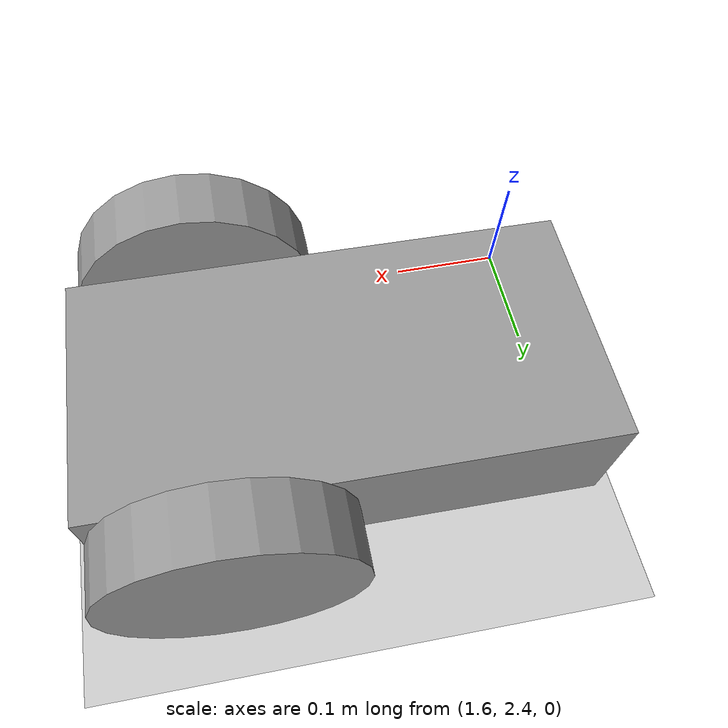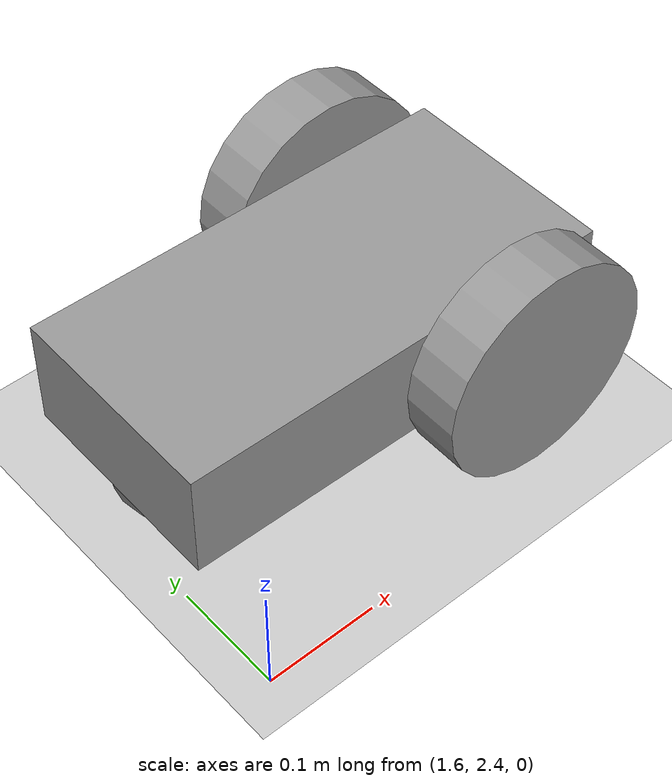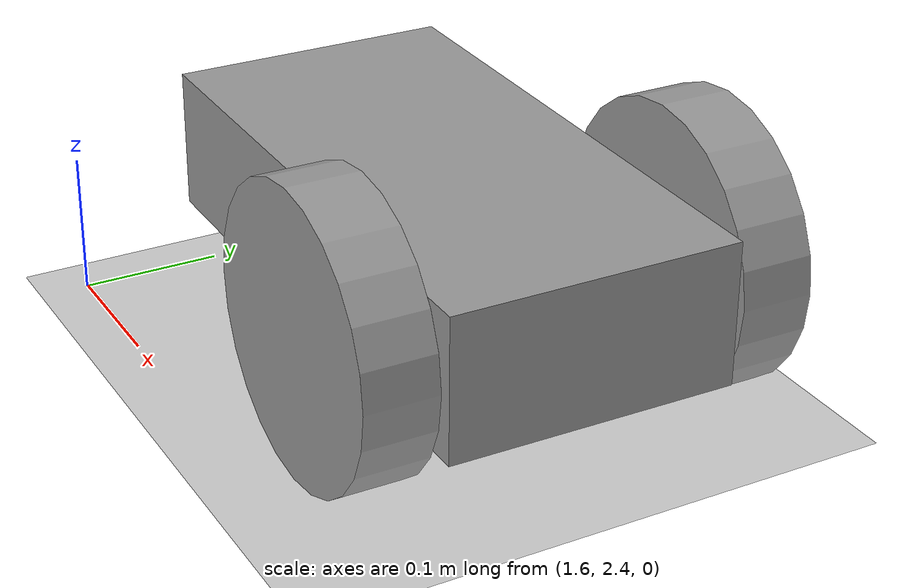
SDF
<sdf version="1.6">
 <world name="default">
  <model name="ground_plane">
   <static>1</static>
   <link name="link">
    <collision name="collision">
     <geometry><plane><normal>0 0 1</normal><size>100 100</size></plane></geometry>
     <surface>
      <contact><collide_bitmask>65535</collide_bitmask></contact>
      <friction><ode><mu>100</mu><mu2>50</mu2></ode></friction>
     </surface>
    </collision>
    <visual name="visual">
     <cast_shadows>0</cast_shadows>
     <geometry><plane><normal>0 0 1</normal><size>100 100</size></plane></geometry>
     <material>
      <script><uri>file://media/materials/scripts/gazebo.material</uri><name>Gazebo/Grey</name></script>
     </material>
    </visual>
   </link>
  </model>
  <model name="robot_0">
   <link name="link_0">
    <pose>-0.066667 0 0 0 -0 0</pose>
    <inertial>
     <mass>1</mass>
     <inertia>
      <ixx>0.166667</ixx>
      <ixy>0</ixy>
      <ixz>0</ixz>
      <iyy>0.166667</iyy>
      <iyz>0</iyz>
      <izz>0.166667</izz>
     </inertia>
    </inertial>
    <visual name="ModelPreview_0::link_0::visual_1">
     <pose>-0.15 0 -0.05 0 -0 0</pose>
     <geometry><sphere><radius>0.05</radius></sphere></geometry>
     <material>
      <lighting>1</lighting>
      <script><uri>file://media/materials/scripts/gazebo.material</uri><name>Gazebo/Grey</name></script>
      <shader type="pixel"><normal_map>__default__</normal_map></shader>
      <ambient>0.3 0.3 0.3 1</ambient>
      <diffuse>0.7 0.7 0.7 1</diffuse>
      <specular>0.01 0.01 0.01 1</specular>
      <emissive>0 0 0 1</emissive>
     </material>
    </visual>
    <visual name="visual">
     <geometry><box><size>0.4 0.2 0.1</size></box></geometry>
     <material>
      <lighting>1</lighting>
      <script><uri>file://media/materials/scripts/gazebo.material</uri><name>Gazebo/Grey</name></script>
      <shader type="pixel"><normal_map>__default__</normal_map></shader>
      <ambient>0.3 0.3 0.3 1</ambient>
      <diffuse>0.7 0.7 0.7 1</diffuse>
      <specular>0.01 0.01 0.01 1</specular>
      <emissive>0 0 0 1</emissive>
     </material>
    </visual>
    <collision name="collision_1">
     <pose>-0.15 0 -0.05 0 -0 0</pose>
     <geometry><sphere><radius>0.05</radius></sphere></geometry>
     <surface>
      <friction>
       <ode><mu>0</mu><mu2>0</mu2><fdir1>0 0 0</fdir1><slip1>1</slip1><slip2>1</slip2></ode>
       <torsional>
        <coefficient>1</coefficient>
        <patch_radius>0</patch_radius>
        <surface_radius>0</surface_radius>
        <use_patch_radius>1</use_patch_radius>
        <ode><slip>0</slip></ode>
       </torsional>
      </friction>
      <bounce><restitution_coefficient>0</restitution_coefficient><threshold>1e+06</threshold></bounce>
      <contact>
       <collide_without_contact>0</collide_without_contact>
       <collide_without_contact_bitmask>1</collide_without_contact_bitmask>
       <collide_bitmask>1</collide_bitmask>
       <ode>
        <soft_cfm>0</soft_cfm>
        <soft_erp>0.2</soft_erp>
        <kp>1e+13</kp>
        <kd>1</kd>
        <max_vel>0.01</max_vel>
        <min_depth>0</min_depth>
       </ode>
       <bullet>
        <split_impulse>1</split_impulse>
        <split_impulse_penetration_threshold>-0.01</split_impulse_penetration_threshold>
        <soft_cfm>0</soft_cfm>
        <soft_erp>0.2</soft_erp>
        <kp>1e+13</kp>
        <kd>1</kd>
       </bullet>
      </contact>
     </surface>
    </collision>
    <collision name="collision">
     <geometry><box><size>0.4 0.2 0.1</size></box></geometry>
     <surface>
      <friction>
       <ode><mu>1</mu><mu2>1</mu2><fdir1>0 0 0</fdir1><slip1>0</slip1><slip2>0</slip2></ode>
       <torsional>
        <coefficient>1</coefficient>
        <patch_radius>0</patch_radius>
        <surface_radius>0</surface_radius>
        <use_patch_radius>1</use_patch_radius>
        <ode><slip>0</slip></ode>
       </torsional>
      </friction>
      <bounce><restitution_coefficient>0</restitution_coefficient><threshold>1e+06</threshold></bounce>
      <contact>
       <collide_without_contact>0</collide_without_contact>
       <collide_without_contact_bitmask>1</collide_without_contact_bitmask>
       <collide_bitmask>1</collide_bitmask>
       <ode>
        <soft_cfm>0</soft_cfm>
        <soft_erp>0.2</soft_erp>
        <kp>1e+13</kp>
        <kd>1</kd>
        <max_vel>0.01</max_vel>
        <min_depth>0</min_depth>
       </ode>
       <bullet>
        <split_impulse>1</split_impulse>
        <split_impulse_penetration_threshold>-0.01</split_impulse_penetration_threshold>
        <soft_cfm>0</soft_cfm>
        <soft_erp>0.2</soft_erp>
        <kp>1e+13</kp>
        <kd>1</kd>
       </bullet>
      </contact>
     </surface>
    </collision>
   </link>
   <link name="link_2">
    <pose>0.033333 0.13 0 -0.000572 1.5707 1.57013</pose>
    <inertial>
     <mass>1</mass>
     <inertia><ixx>0.145833</ixx><ixy>0</ixy><ixz>0</ixz><iyy>0.145833</iyy><iyz>0</iyz><izz>0.125</izz></inertia>
    </inertial>
    <visual name="visual">
     <geometry><cylinder><radius>0.1</radius><length>0.05</length></cylinder></geometry>
     <material>
      <lighting>1</lighting>
      <script><uri>file://media/materials/scripts/gazebo.material</uri><name>Gazebo/Grey</name></script>
      <shader type="pixel"><normal_map>__default__</normal_map></shader>
      <ambient>0.3 0.3 0.3 1</ambient>
      <diffuse>0.7 0.7 0.7 1</diffuse>
      <specular>0.01 0.01 0.01 1</specular>
      <emissive>0 0 0 1</emissive>
     </material>
    </visual>
    <collision name="collision">
     <geometry><cylinder><radius>0.1</radius><length>0.05</length></cylinder></geometry>
     <surface>
      <friction>
       <ode><mu>1</mu><mu2>1</mu2><fdir1>0 0 0</fdir1><slip1>0</slip1><slip2>0</slip2></ode>
       <torsional>
        <coefficient>1</coefficient>
        <patch_radius>0</patch_radius>
        <surface_radius>0</surface_radius>
        <use_patch_radius>1</use_patch_radius>
        <ode><slip>0</slip></ode>
       </torsional>
      </friction>
      <bounce><restitution_coefficient>0</restitution_coefficient><threshold>1e+06</threshold></bounce>
      <contact>
       <collide_without_contact>0</collide_without_contact>
       <collide_without_contact_bitmask>1</collide_without_contact_bitmask>
       <collide_bitmask>1</collide_bitmask>
       <ode>
        <soft_cfm>0</soft_cfm>
        <soft_erp>0.2</soft_erp>
        <kp>1e+13</kp>
        <kd>1</kd>
        <max_vel>0.01</max_vel>
        <min_depth>0</min_depth>
       </ode>
       <bullet>
        <split_impulse>1</split_impulse>
        <split_impulse_penetration_threshold>-0.01</split_impulse_penetration_threshold>
        <soft_cfm>0</soft_cfm>
        <soft_erp>0.2</soft_erp>
        <kp>1e+13</kp>
        <kd>1</kd>
       </bullet>
      </contact>
     </surface>
    </collision>
   </link>
   <link name="link_3">
    <pose>0.033333 -0.13 0 4.8e-05 1.5707 1.57075</pose>
    <inertial>
     <mass>1</mass>
     <inertia><ixx>0.145833</ixx><ixy>0</ixy><ixz>0</ixz><iyy>0.145833</iyy><iyz>0</iyz><izz>0.125</izz></inertia>
    </inertial>
    <visual name="visual">
     <geometry><cylinder><radius>0.1</radius><length>0.05</length></cylinder></geometry>
     <material>
      <lighting>1</lighting>
      <script><uri>file://media/materials/scripts/gazebo.material</uri><name>Gazebo/Grey</name></script>
      <shader type="pixel"><normal_map>__default__</normal_map></shader>
      <ambient>0.3 0.3 0.3 1</ambient>
      <diffuse>0.7 0.7 0.7 1</diffuse>
      <specular>0.01 0.01 0.01 1</specular>
      <emissive>0 0 0 1</emissive>
     </material>
    </visual>
    <collision name="collision">
     <geometry><cylinder><radius>0.1</radius><length>0.05</length></cylinder></geometry>
     <surface>
      <friction>
       <ode><mu>1</mu><mu2>1</mu2><fdir1>0 0 0</fdir1><slip1>0</slip1><slip2>0</slip2></ode>
       <torsional>
        <coefficient>1</coefficient>
        <patch_radius>0</patch_radius>
        <surface_radius>0</surface_radius>
        <use_patch_radius>1</use_patch_radius>
        <ode><slip>0</slip></ode>
       </torsional>
      </friction>
      <bounce><restitution_coefficient>0</restitution_coefficient><threshold>1e+06</threshold></bounce>
      <contact>
       <collide_without_contact>0</collide_without_contact>
       <collide_without_contact_bitmask>1</collide_without_contact_bitmask>
       <collide_bitmask>1</collide_bitmask>
       <ode>
        <soft_cfm>0</soft_cfm>
        <soft_erp>0.2</soft_erp>
        <kp>1e+13</kp>
        <kd>1</kd>
        <max_vel>0.01</max_vel>
        <min_depth>0</min_depth>
       </ode>
       <bullet>
        <split_impulse>1</split_impulse>
        <split_impulse_penetration_threshold>-0.01</split_impulse_penetration_threshold>
        <soft_cfm>0</soft_cfm>
        <soft_erp>0.2</soft_erp>
        <kp>1e+13</kp>
        <kd>1</kd>
       </bullet>
      </contact>
     </surface>
    </collision>
   </link>
   <joint name="link_0_JOINT_1" type="revolute">
    <parent>link_0</parent>
    <child>link_3</child>
    <pose>0 0 0.03 0 -0 0</pose>
    <axis>
     <xyz>0 1 0</xyz>
     <use_parent_model_frame>0</use_parent_model_frame>
     <limit>
      <lower>-1.79769e+308</lower>
      <upper>1.79769e+308</upper>
      <effort>-1</effort>
      <velocity>-1</velocity>
     </limit>
     <dynamics>
      <spring_reference>0</spring_reference>
      <spring_stiffness>0</spring_stiffness>
      <damping>0</damping>
     </dynamics>
    </axis>
    <physics>
     <ode><limit><cfm>0</cfm><erp>0.2</erp></limit><suspension><cfm>0</cfm><erp>0.2</erp></suspension></ode>
    </physics>
   </joint>
   <joint name="link_0_JOINT_2" type="revolute">
    <parent>link_0</parent>
    <child>link_2</child>
    <pose>0 0 -0.03 0 -0 0</pose>
    <axis>
     <xyz>0 1 0</xyz>
     <use_parent_model_frame>0</use_parent_model_frame>
     <limit>
      <lower>-1.79769e+308</lower>
      <upper>1.79769e+308</upper>
      <effort>-1</effort>
      <velocity>-1</velocity>
     </limit>
     <dynamics>
      <spring_reference>0</spring_reference>
      <spring_stiffness>0</spring_stiffness>
      <damping>0</damping>
     </dynamics>
    </axis>
    <physics>
     <ode><limit><cfm>0</cfm><erp>0.2</erp></limit><suspension><cfm>0</cfm><erp>0.2</erp></suspension></ode>
    </physics>
   </joint>
   <static>0</static>
   <pose>1.8682 2.57985 0.1 2.9e-05 -1e-06 -0.008715</pose>
  </model>
 </world>
</sdf>
